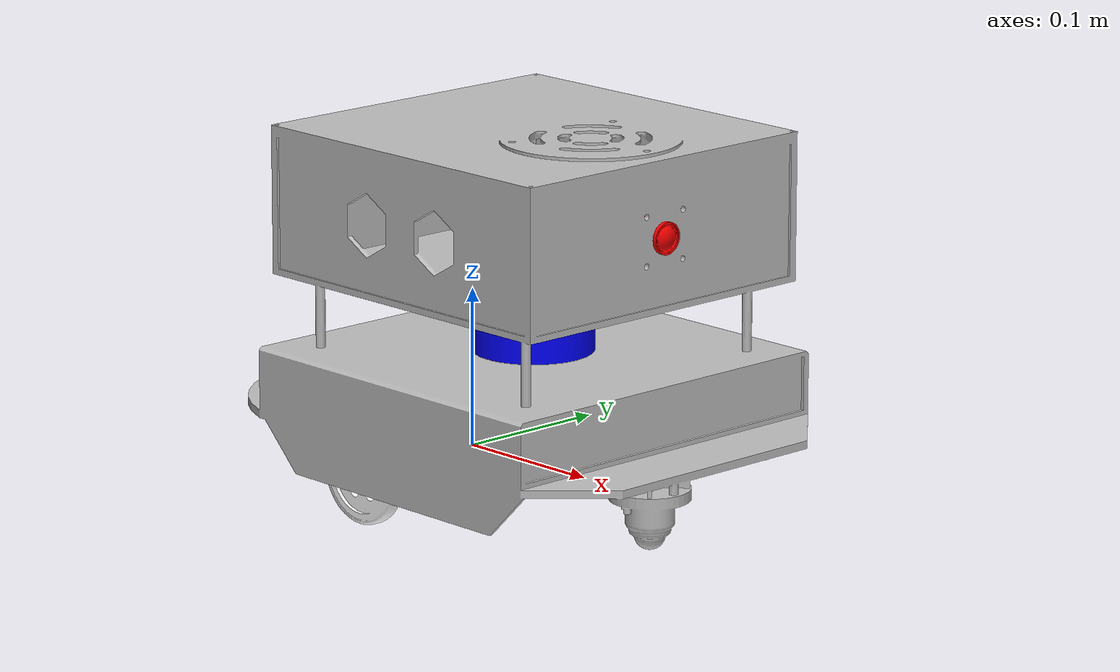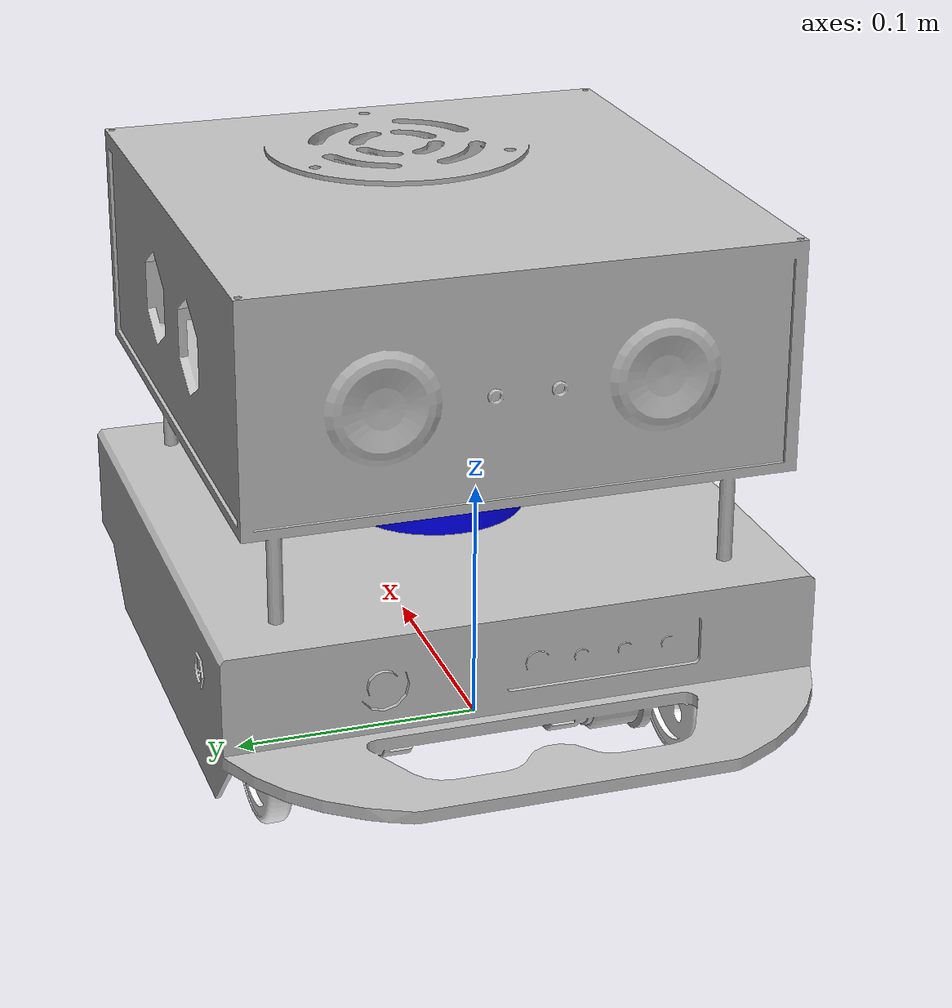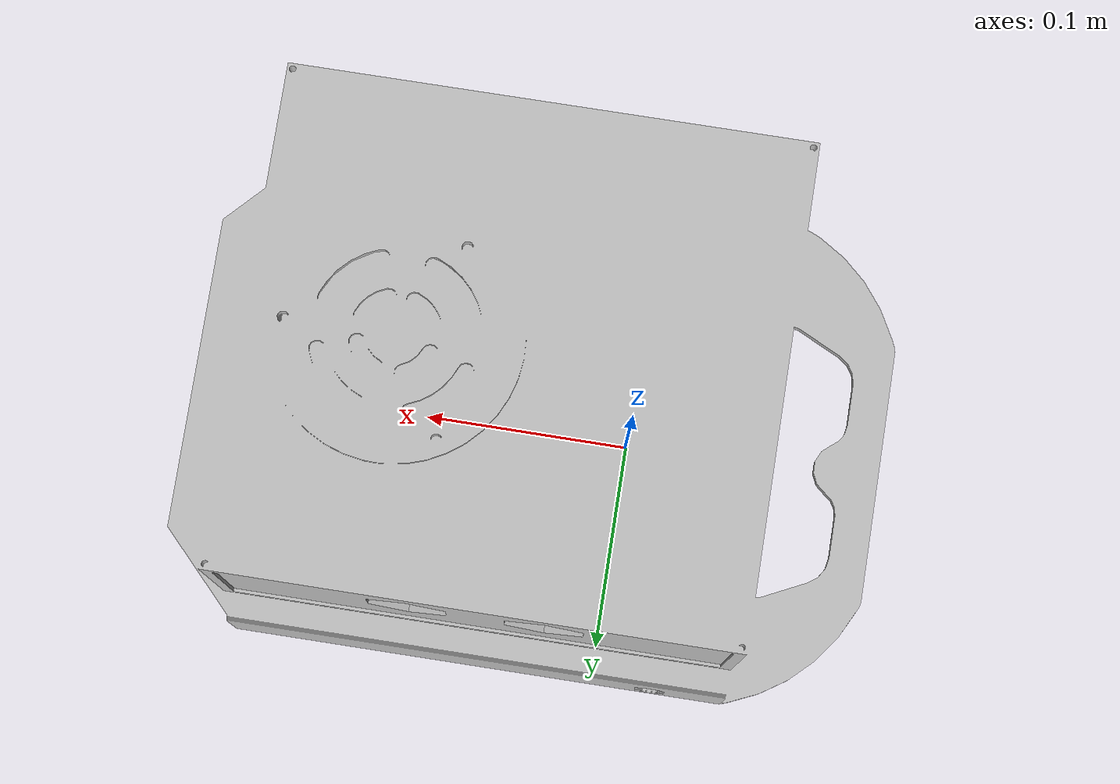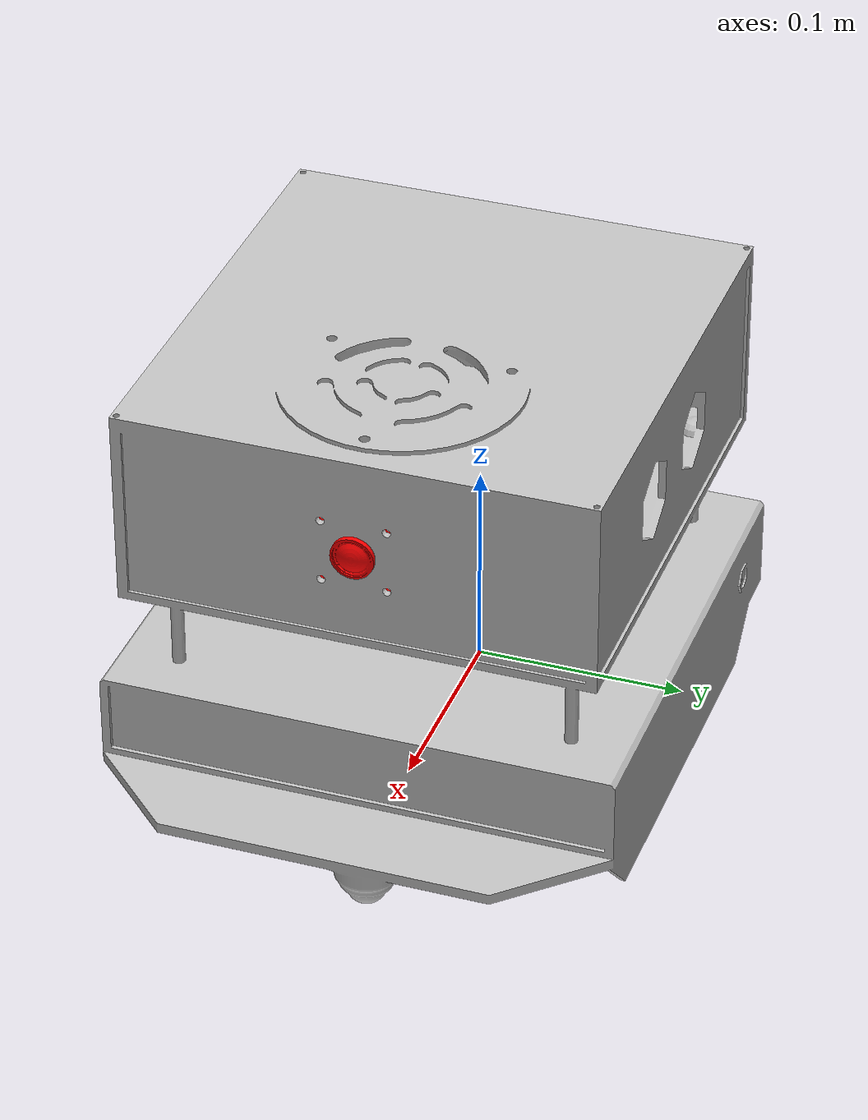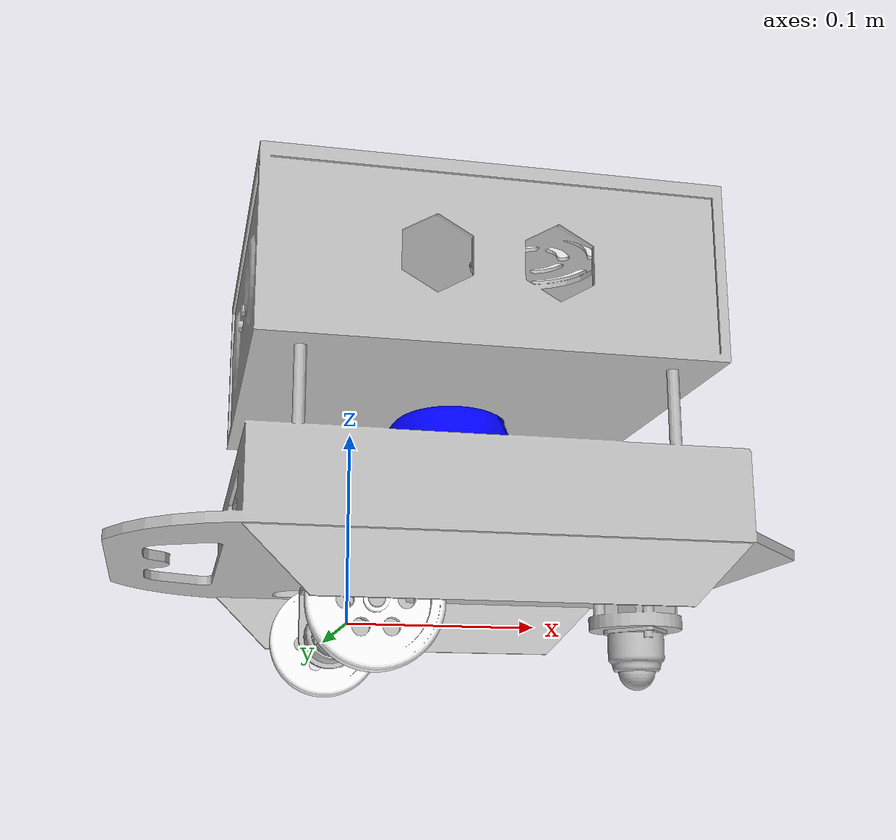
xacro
<?xml version="1.0" encoding="utf-8"?>
<robot name="robot_description" xmlns:xacro="http://www.ros.org/wiki/xacro">
<xacro:include filename="$(find robot_description)/urdf/sensors.xacro" />
<!--base_link-->
 <link name="base_footprint"/>

  <link
  name="base_link">
    <inertial>
      <origin
        xyz="0 0 0"
        rpy="0 0 0" />
      <mass
        value="0.1" />
      <inertia
        ixx="0.00001"
        ixy="0"
        ixz="0"
        iyy="0.00001"
        iyz="0"
        izz="0.00001" />
    </inertial>
    <visual>
      <origin
        xyz="0 0 0"
        rpy="0 0 0" />
      <geometry>
        <mesh
          filename="package://robot_description/meshes/base_link.STL" />
      </geometry>
      <material
        name="">
        <color
          rgba="0.75294 0.75294 0.75294 1" />
      </material>
    </visual>
    <collision>
      <origin
        xyz="0 0 0"
        rpy="0 0 0" />
      <geometry>
        <mesh
          filename="package://robot_description/meshes/base_link.STL" />
      </geometry>
    </collision>
  </link>

  <joint name="base_link_joint" type="fixed">
    <origin xyz="0 0 0" rpy="0 0 0" />
    <parent link="base_footprint"/>
    <child link="base_link" />
  </joint>

<!--left_wheel-->
  <link
    name="left_wheel">
    <inertial>
      <origin
        xyz="0 0 0"
        rpy="0 0 0" />
      <mass
        value="0.2" />
      <inertia
        ixx="0.00001"
        ixy="0"
        ixz="0"
        iyy="0.00001"
        iyz="0"
        izz="0.00001" />
    </inertial>
    <visual>
      <origin
        xyz="0 0 0"
        rpy="0 0 0" />
      <geometry>
        <mesh
          filename="package://robot_description/meshes/left_wheel.STL" />
      </geometry>
      <material
        name="">
        <color
          rgba="1 1 1 1" />
      </material>
    </visual>
    <collision>
      <origin
        xyz="0 0 0"
        rpy="0 0 0" />
      <geometry>
        <mesh
          filename="package://robot_description/meshes/left_wheel.STL" />
      </geometry>
    </collision>
  </link>
  <joint
    name="left_wheel_joint"
    type="continuous">
    <origin
      xyz="0 0.0899999999999911 0"
      rpy="0 0 0" />
    <parent
      link="base_link" />
    <child
      link="left_wheel" />
    <axis
      xyz="0 1 0" />
  </joint>
<!--right_wheel-->
  <link
    name="right_wheel">
    <inertial>
      <origin
        xyz="0 0 0"
        rpy="0 0 0" />
      <mass
        value="0.2" />
      <inertia
        ixx="0.00001"
        ixy="0"
        ixz="0"
        iyy="0.00001"
        iyz="0"
        izz="0.00001" />
    </inertial>
    <visual>
      <origin
        xyz="0 0 0"
        rpy="0 0 0" />
      <geometry>
        <mesh
          filename="package://robot_description/meshes/right_wheel.STL" />
      </geometry>
      <material
        name="">
        <color
          rgba="1 1 1 1" />
      </material>
    </visual>
    <collision>
      <origin
        xyz="0 0 0"
        rpy="0 0 0" />
      <geometry>
        <mesh
          filename="package://robot_description/meshes/right_wheel.STL" />
      </geometry>
    </collision>
  </link>
  <joint
    name="right_wheel_joint"
    type="continuous">
    <origin
      xyz="0 -0.0899999999999911 0"
      rpy="0 0 0" />
    <parent
      link="base_link" />
    <child
      link="right_wheel" />
    <axis
      xyz="0 1 0" />
  </joint>
<!--lidar-->
  <link
    name="lidar">
    <inertial>
      <origin
        xyz="0 0 0"
        rpy="0 0 0" />
      <mass
        value="0.05" />
      <inertia
        ixx="0.00001"
        ixy="0"
        ixz="0"
        iyy="0.00001"
        iyz="0"
        izz="0.00001" />
    </inertial>
    <visual>
      <origin
        xyz="0 0 0"
        rpy="0 0 0" />
      <geometry>
        <mesh
          filename="package://robot_description/meshes/lidar.STL" />
      </geometry>
      <material
        name="">
        <color
          rgba="0 0 1 1" />
      </material>
    </visual>
    <collision>
      <origin
        xyz="0 0 0"
        rpy="0 0 0" />
      <geometry>
        <mesh
          filename="package://robot_description/meshes/lidar.STL" />
      </geometry>
    </collision>
  </link>
  <joint
    name="lidar_joint"
    type="fixed">
    <origin
      xyz="0.0550000000000001 0 0.0915975845410628"
      rpy="0 0 0" />
    <parent
      link="base_link" />
    <child
      link="lidar" />
    <axis
      xyz="0 0 0" />
  </joint>
<!--camera-->
  <link
    name="camera">
    <inertial>
      <origin
        xyz="0 0 0"
        rpy="0 0 0" />
      <mass
        value="0.01" />
      <inertia
        ixx="0.00001"
        ixy="0"
        ixz="0"
        iyy="0.00001"
        iyz="0"
        izz="0.00001" />
    </inertial>
    <visual>
      <origin
        xyz="0 0 0"
        rpy="0 0 0" />
      <geometry>
        <mesh
          filename="package://robot_description/meshes/camera.STL" />
      </geometry>
      <material
        name="">
        <color
          rgba="1 0 0 1" />
      </material>
    </visual>
    <collision>
      <origin
        xyz="0 0 0"
        rpy="0 0 0" />
      <geometry>
        <mesh
          filename="package://robot_description/meshes/camera.STL" />
      </geometry>
    </collision>
  </link>
  <joint
    name="camera_joint"
    type="fixed">
    <origin
      xyz="0.168 0 0.1625"
      rpy="0 0 0" />
    <parent
      link="base_link" />
    <child
      link="camera" />
    <axis
      xyz="0 0 0" />
  </joint>
</robot>
